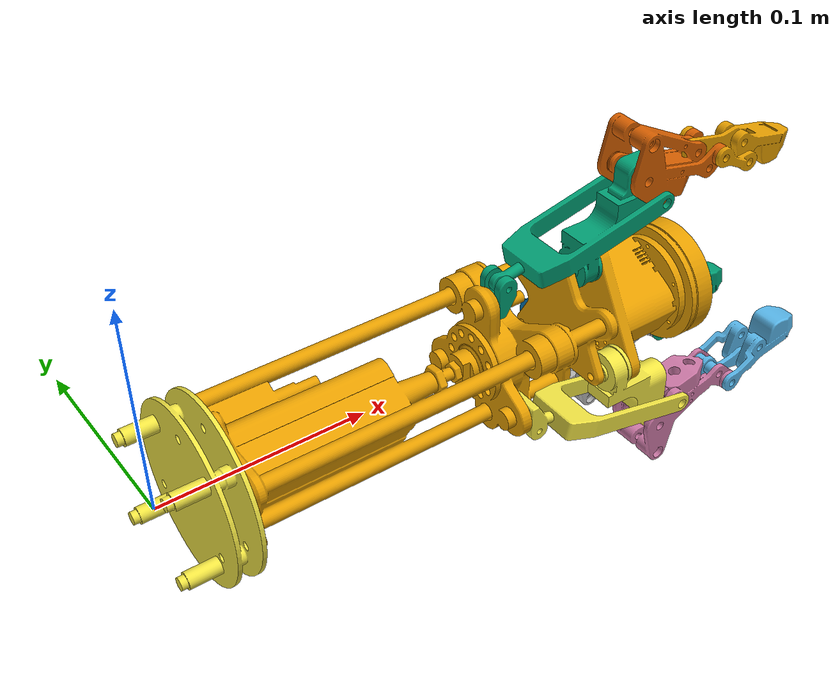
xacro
<?xml version="1.0"?>
<robot name="dhand" xmlns:xacro="http://ros.org/wiki/xacro">

  <xacro:include filename="$(find dhand_description)/robots/dhand.urdf.xacro"/>
  <xacro:include filename="$(find dhand_description)/urdf/adapter/adapter.urdf.xacro"/>

  <joint name="dhand_base_joint" type="fixed">
	<origin xyz="0.028 0 0" rpy="0 0 0"/>
	<parent link="dhand_adapter_link"/>
	<child link="dhand_base_link"/>
  </joint>
  <xacro:dhand_adapter_v0/>

</robot>

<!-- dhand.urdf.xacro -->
<robot name="dhand" xmlns:xacro="http://ros.org/wiki/xacro">

  <xacro:include filename="$(find dhand_description)/urdf/common.xacro"/>
  <xacro:include filename="$(find dhand_description)/urdf/base/base.urdf.xacro"/>
  <xacro:include filename="$(find dhand_description)/urdf/finger/finger.urdf.xacro"/>
  <xacro:include filename="$(find dhand_description)/urdf/adapter/adapter.urdf.xacro"/>

  <!-- =============== Inertial Info =============== -->
  <xacro:property name="finger_base_mass">
	<mass value="0.04234931"/>
  </xacro:property>
  <xacro:property name="finger_middle_mass">
	<mass value="0.02332939"/>
  </xacro:property>
  <xacro:property name="finger_top_mass">
	<mass value="0.01452790"/>
  </xacro:property>
  <xacro:property name="finger_base_inertia">
	<inertia ixx="1e-3" ixy="0.00000000" ixz="-0.00001443"
			 iyy="1e-3" iyz="0.00000000"
			 izz="1e-3" />
  </xacro:property>
  <xacro:property name="finger_middle_inertia">
	<inertia ixx="1e-3" ixy="0.00000220" ixz="0.00000000"
			 iyy="1e-3" iyz="0.00000004"
			 izz="1e-3" />
  </xacro:property>
  <xacro:property name="finger_top_inertia">
	<inertia ixx="1e-3" ixy="0.00000139" ixz="0.00000000"
			 iyy="1e-3" iyz="0.00000000"
			 izz="1e-3" />
  </xacro:property>

  <!-- =============== Link & Joint =============== -->
  <!-- ==== Base ==== -->
  <xacro:dhand_base_v0 />

  <!-- ==== finger base ==== -->
  <xacro:dhand_fixed_finger_base/>

  <xacro:dhand_finger_v0 parent="dhand_base_link" prefix="base" side="right">
  	<origin xyz="0.1865 -0.025964675 -0.01505875" rpy="${180*M_PI/180} ${-90*M_PI/180} 0"/>
  	<axis xyz="0 0 1"/>
	<limit effort="10.0" lower="${-120*M_PI/180}" upper="0.0" velocity="10.0"/>
  	<insert_block name="finger_base_mass"/>
  	<insert_block name="finger_base_inertia"/>
  </xacro:dhand_finger_v0>

  <xacro:dhand_finger_v0 parent="dhand_base_link" prefix="base" side="left">
  	<origin xyz="0.1865 0.02601464 -0.01494117" rpy="${-180*M_PI/180} ${-90*M_PI/180} 0"/>
  	<axis xyz="0 0 1"/>
	<limit effort="10.0" lower="0.0" upper="${120*M_PI/180}" velocity="10.0"/>
  	<insert_block name="finger_base_mass"/>
  	<insert_block name="finger_base_inertia"/>
  </xacro:dhand_finger_v0>

  <!--==== finger middle ====-->
  <xacro:dhand_finger_v0 parent="dhand_finger_base_middle_link" prefix="middle" side="middle">
  	<origin xyz="-0.0415 0 0.033" rpy="${90*M_PI/180} 0 0"/>
  	<axis xyz="0 0 -1"/>
	<limit effort="10.0" lower="0.0" upper="0.02" velocity="10.0"/>
  	<insert_block name="finger_middle_mass"/>
  	<insert_block name="finger_middle_inertia"/>
  </xacro:dhand_finger_v0>

  <xacro:dhand_finger_v0 parent="dhand_finger_base_right_link" prefix="middle" side="right">
  	<origin xyz="-0.0415 0 0.033" rpy="${90*M_PI/180} 0 0"/>
  	<axis xyz="0 0 -1"/>
	<limit effort="10.0" lower="0.0" upper="0.02" velocity="10.0"/>
  	<insert_block name="finger_middle_mass"/>
  	<insert_block name="finger_middle_inertia"/>
  </xacro:dhand_finger_v0>

  <xacro:dhand_finger_v0 parent="dhand_finger_base_left_link" prefix="middle" side="left">
  	<origin xyz="-0.0415 0 0.033" rpy="${90*M_PI/180} 0 0"/>
  	<axis xyz="0 0 -1"/>
	<limit effort="10.0" lower="0.0" upper="0.02" velocity="10.0"/>
  	<insert_block name="finger_middle_mass"/>
  	<insert_block name="finger_middle_inertia"/>
  </xacro:dhand_finger_v0>

  <!-- ==== finger top ==== -->
  <xacro:dhand_finger_v0 parent="dhand_finger_middle_middle_link" prefix="top" side="middle">
  	<origin xyz="0.00976095 0.0434937 0.0" rpy="0 0 0"/>
  	<axis xyz="0 0 -1"/>
	<limit effort="10.0" lower="0.0" upper="1.40" velocity="10.0"/>
  	<insert_block name="finger_top_mass"/>
  	<insert_block name="finger_top_inertia"/>
  </xacro:dhand_finger_v0>

  <xacro:dhand_finger_v0 parent="dhand_finger_middle_right_link" prefix="top" side="right">
  	<origin xyz="0.00976095 0.0434937 0.0" rpy="0 0 0"/>
  	<axis xyz="0 0 -1"/>
	<limit effort="10.0" lower="0.0" upper="1.40" velocity="10.0"/>
  	<insert_block name="finger_top_mass"/>
  	<insert_block name="finger_top_inertia"/>
  </xacro:dhand_finger_v0>

  <xacro:dhand_finger_v0 parent="dhand_finger_middle_left_link" prefix="top" side="left">
  	<origin xyz="0.00976095 0.0434937 0.0" rpy="0 0 0"/>
  	<axis xyz="0 0 -1"/>
	<limit effort="10.0" lower="0.0" upper="1.40" velocity="10.0"/>
  	<insert_block name="finger_top_mass"/>
  	<insert_block name="finger_top_inertia"/>
  </xacro:dhand_finger_v0>

  <!-- =============== Gazebo =============== -->
  <!-- ==== Adapter ==== -->
  <xacro:dhand_adapter_gazebo_v0/>
  <!-- ==== Base ==== -->
  <xacro:dhand_base_gazebo_v0/>
  <!-- ==== Fingers ==== -->
  <xacro:dhand_finger_gazebo_v0 prefix="base" side="middle"/>
  <xacro:dhand_finger_gazebo_v0 prefix="base" side="right"/>
  <xacro:dhand_finger_gazebo_v0 prefix="base" side="left"/>
  <xacro:dhand_finger_gazebo_v0 prefix="middle" side="middle"/>
  <xacro:dhand_finger_gazebo_v0 prefix="middle" side="right"/>
  <xacro:dhand_finger_gazebo_v0 prefix="middle" side="left"/>
  <xacro:dhand_finger_gazebo_v0 prefix="top" side="middle"/>
  <xacro:dhand_finger_gazebo_v0 prefix="top" side="right"/>
  <xacro:dhand_finger_gazebo_v0 prefix="top" side="left"/>

  <!-- ====== Transmissions ====== -->
  <xacro:dhand_finger_trans_v0 prefix="base" side="right"/>
  <xacro:dhand_finger_trans_v0 prefix="base" side="left"/>
  <xacro:dhand_finger_trans_v0 prefix="middle" side="middle"/>
  <xacro:dhand_finger_trans_v0 prefix="middle" side="right"/>
  <xacro:dhand_finger_trans_v0 prefix="middle" side="left"/>
  <xacro:dhand_finger_trans_v0 prefix="top" side="middle"/>
  <xacro:dhand_finger_trans_v0 prefix="top" side="right"/>
  <xacro:dhand_finger_trans_v0 prefix="top" side="left"/>

</robot>

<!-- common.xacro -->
<robot xmlns:xacro="http://ros.org/wiki/xacro">
  <property name="M_PI" value="3.14159274"/>
</robot>

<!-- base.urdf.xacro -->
<robot xmlns:xacro="http://ros.org/wiki/xacro">

  <xacro:include filename="$(find dhand_description)/urdf/base/base.gazebo.xacro"/>

  <xacro:macro name="dhand_base_v0">
    <link name="dhand_base_link">
      <visual>
        <geometry>
          <mesh filename="package://dhand_description/meshes/visual/base/base.dae"/>
        </geometry>
      </visual>
      <collision>
        <geometry>
          <mesh filename="package://dhand_description/meshes/collision/base.STL"/>
        </geometry>
      </collision>
      <inertial>
        <mass value="1.22813391"/>
        <inertia ixx="0.00052834" ixy="0.00000936" ixz="0.00000419"
				 iyy="0.01395061" iyz="0.00000326"
				 izz="0.01395381" />
      </inertial>
    </link>

	<joint name="dhand_palm_joint" type="fixed">
	  <origin xyz="0.255 0 0"/>
	  <parent link="dhand_base_link"/>
	  <child link="dhand_palm_link"/>
	</joint>

	<link name="dhand_palm_link"/>
  </xacro:macro>

</robot>

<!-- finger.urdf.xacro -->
<robot xmlns:xacro="http://ros.org/wiki/xacro">

  <xacro:include filename="$(find dhand_description)/urdf/common.xacro"/>
  <xacro:include filename="$(find dhand_description)/urdf/finger/finger.gazebo.xacro"/>
  <xacro:include filename="$(find dhand_description)/urdf/finger/finger.transmission.xacro"/>

  <xacro:macro name="dhand_finger_v0" params="parent prefix side *joint_origin *joint_axis *joint_limit *mass *inertia">
	<joint name="dhand_finger_${prefix}_${side}_joint" type="revolute">
	  <insert_block name="joint_origin"/>
	  <parent link="${parent}"/>
	  <child link="dhand_finger_${prefix}_${side}_link"/>
	  <insert_block name="joint_axis"/>
	  <dynamics damping="0.7" friction="0.7"/>
	  <insert_block name="joint_limit"/>
	</joint>

	<link name="dhand_finger_${prefix}_${side}_link">
	  <visual>
		<geometry>
		  <mesh filename="package://dhand_description/meshes/visual/finger/${prefix}/finger_${prefix}.dae"/>
		</geometry>
	  </visual>
	  <collision>
		<geometry>
		  <mesh filename="package://dhand_description/meshes/collision/finger/finger_${prefix}.STL"/>
		</geometry>
	  </collision>
	  <inertial>
		<insert_block name="mass"/>
	  	<insert_block name="inertia"/>
	  </inertial>
	</link>
  </xacro:macro>

  <xacro:macro name="dhand_fixed_finger_base">
	<joint name="dhand_finger_base_middle_joint" type="fixed">
	  <origin xyz="0.1865 0 0.03" rpy="0 ${90*M_PI/180} 0"/>
	  <parent link="dhand_base_link"/>
	  <child link="dhand_finger_base_middle_link"/>
	</joint>

	<link name="dhand_finger_base_middle_link">
	  <visual>
		<geometry>
		  <mesh filename="package://dhand_description/meshes/visual/finger/base/finger_base.dae"/>
		</geometry>
	  </visual>
	  <collision>
		<geometry>
		  <mesh filename="package://dhand_description/meshes/collision/finger/finger_base.STL"/>
		</geometry>
	  </collision>
	  <inertial>
		<mass value="0.04234931"/>
		<inertia ixx="1e-3" ixy="0.00000000" ixz="-0.00001443"
				 iyy="1e-3" iyz="0.00000000"
				 izz="1e-3" />
	  </inertial>
	</link>
  </xacro:macro>
</robot>

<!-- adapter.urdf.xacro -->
<robot xmlns:xacro="http://ros.org/wiki/xacro">

  <xacro:include filename="$(find dhand_description)/urdf/adapter/adapter.gazebo.xacro"/>

  <xacro:macro name="dhand_adapter_v0">
    <link name="dhand_adapter_link">
      <visual>
        <geometry>
          <mesh filename="package://dhand_description/meshes/visual/adapter/adapter.dae"/>
        </geometry>
      </visual>
      <collision>
        <geometry>
          <mesh filename="package://dhand_description/meshes/collision/adapter.STL"/>
        </geometry>
      </collision>
      <inertial>
        <mass value="0.09444833"/>
        <inertia ixx="1e-3" ixy="0.00000000" ixz="0.00000000"
				 iyy="1e-3" iyz="0.00000000"
				 izz="1e-3" />
      </inertial>
    </link>
  </xacro:macro>
</robot>
